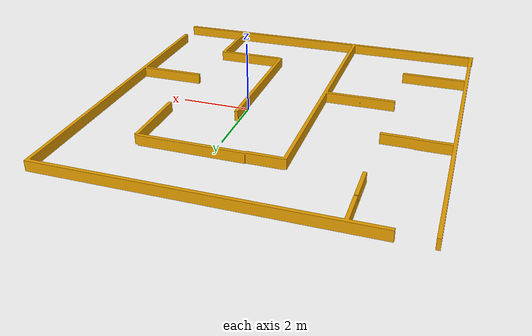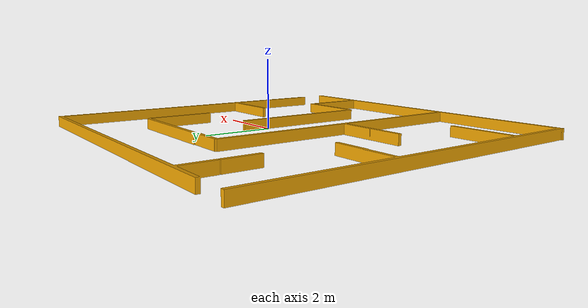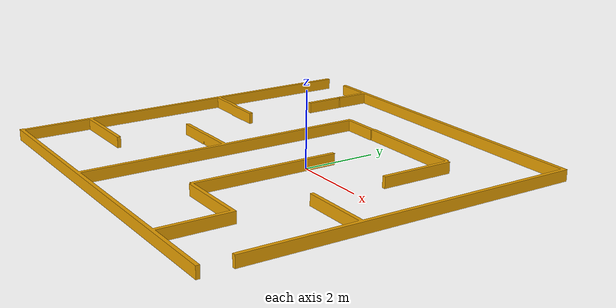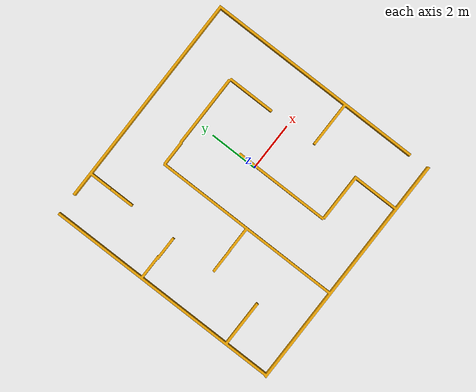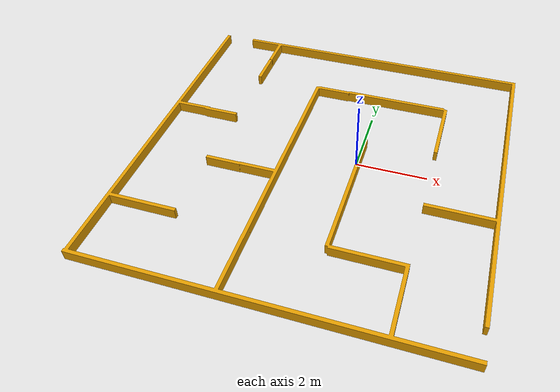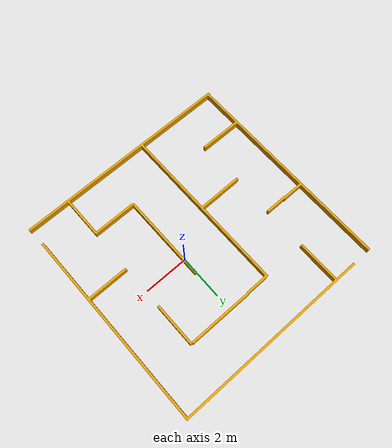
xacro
<?xml version="1.0"?>

<robot name="edufill_maze" static="true">

<xacro:macro name="edufill_maze" params="name">

	<link name="edufill_maze">
		<inertial>
			<origin xyz="0 0 1"/>
			<mass value="10.0"/>
			<inertia ixx="1.0" ixy="0.0" ixz="0.0" iyy="1.0" iyz="0.0" izz="1.0"/>
		</inertial>
		<collision name="maze_collision">
            		<geometry>
                		<mesh filename="package://edufill_gazebo_world/common/worlds/edufill_maze.dae" scale="1 1 1"/>
            		</geometry>
        	</collision>
		<visual>
			<geometry>
				<mesh filename= "package://edufill_gazebo_world/common/worlds/edufill_maze.dae" scale="1 1 1"/>
			</geometry>
		</visual>
	</link>

</xacro:macro>

<xacro:edufill_maze name="edufill_maze" />

</robot>
